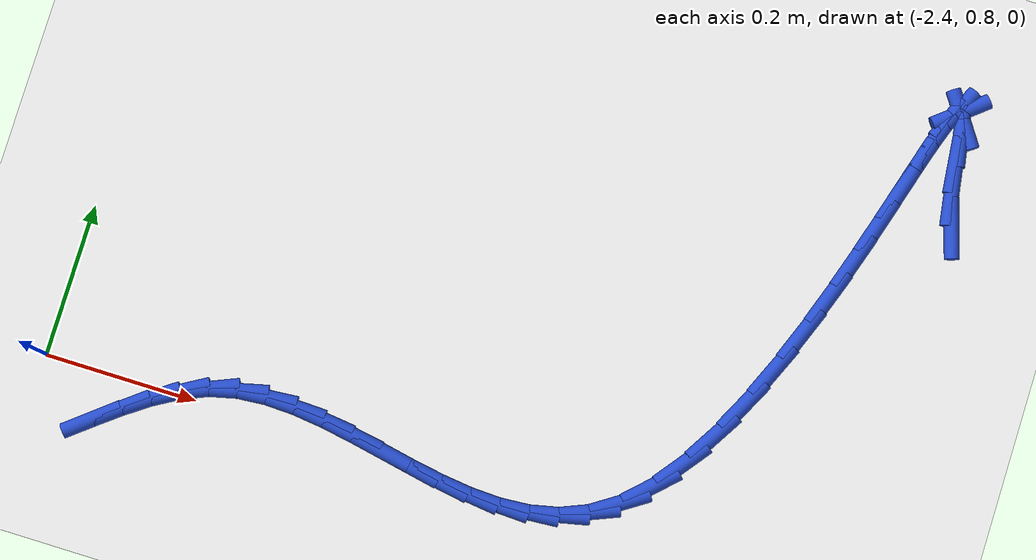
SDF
<sdf version="1.6">
 <world name="default">
  <model name="ground_plane">
   <static>1</static>
   <link name="link">
    <collision name="collision">
     <geometry><plane><normal>0 0 1</normal><size>100 100</size></plane></geometry>
     <surface><friction><ode><mu>100</mu><mu2>50</mu2></ode></friction></surface>
    </collision>
    <visual name="visual">
     <cast_shadows>0</cast_shadows>
     <geometry><plane><normal>0 0 1</normal><size>100 100</size></plane></geometry>
     <material>
      <script><uri>file://media/materials/scripts/gazebo.material</uri><name>Gazebo/WhiteGlow</name></script>
     </material>
    </visual>
   </link>
  </model>
  <model name="line">
   <link name="link_54">
    <pose>-1.3430984188779078 1.2956565197262773 0.01 0 1.57 -1.2797417583829147</pose>
    <collision name="collision">
     <geometry><cylinder><radius>0.01</radius><length>0.08</length></cylinder></geometry>
    </collision>
    <visual name="visual">
     <material>
      <script><name>Gazebo/Blue</name><uri>file://media/materials/scripts/gazebo.material</uri></script>
     </material>
     <geometry><cylinder><radius>0.01</radius><length>0.08</length></cylinder></geometry>
    </visual>
   </link>
   <link name="link_55">
    <pose>-1.3552226402459078 1.3361297322374697 0.01 0 1.57 -1.4208867539696892</pose>
    <collision name="collision">
     <geometry><cylinder><radius>0.01</radius><length>0.08</length></cylinder></geometry>
    </collision>
    <visual name="visual">
     <material>
      <script><name>Gazebo/Blue</name><uri>file://media/materials/scripts/gazebo.material</uri></script>
     </material>
     <geometry><cylinder><radius>0.01</radius><length>0.08</length></cylinder></geometry>
    </visual>
   </link>
   <link name="link_56">
    <pose>-1.361479244165218 1.3775524743925938 0.01 0 1.57 -1.469807228665049</pose>
    <collision name="collision">
     <geometry><cylinder><radius>0.01</radius><length>0.08</length></cylinder></geometry>
    </collision>
    <visual name="visual">
     <material>
      <script><name>Gazebo/Blue</name><uri>file://media/materials/scripts/gazebo.material</uri></script>
     </material>
     <geometry><cylinder><radius>0.01</radius><length>0.08</length></cylinder></geometry>
    </visual>
   </link>
   <link name="link_57">
    <pose>-1.365031373855405 1.4126062150390049 0.01 0 1.57 -1.4000625566689096</pose>
    <collision name="collision">
     <geometry><cylinder><radius>0.01</radius><length>0.08</length></cylinder></geometry>
    </collision>
    <visual name="visual">
     <material>
      <script><name>Gazebo/Blue</name><uri>file://media/materials/scripts/gazebo.material</uri></script>
     </material>
     <geometry><cylinder><radius>0.01</radius><length>0.08</length></cylinder></geometry>
    </visual>
   </link>
   <link name="link_58">
    <pose>-1.368822848540975 1.4345969575189295 0.01 0 1.57 -0.98458259522996</pose>
    <collision name="collision">
     <geometry><cylinder><radius>0.01</radius><length>0.08</length></cylinder></geometry>
    </collision>
    <visual name="visual">
     <material>
      <script><name>Gazebo/Blue</name><uri>file://media/materials/scripts/gazebo.material</uri></script>
     </material>
     <geometry><cylinder><radius>0.01</radius><length>0.08</length></cylinder></geometry>
    </visual>
   </link>
   <link name="link_59">
    <pose>-1.3738923343924123 1.4422307387749302 0.01 0 1.57 0.687512411817933</pose>
    <collision name="collision">
     <geometry><cylinder><radius>0.01</radius><length>0.08</length></cylinder></geometry>
    </collision>
    <visual name="visual">
     <material>
      <script><name>Gazebo/Blue</name><uri>file://media/materials/scripts/gazebo.material</uri></script>
     </material>
     <geometry><cylinder><radius>0.01</radius><length>0.08</length></cylinder></geometry>
    </visual>
   </link>
   <link name="link_60">
    <pose>-1.3803089806841495 1.4369616289344793 0.01 0 1.57 1.1325113725217084</pose>
    <collision name="collision">
     <geometry><cylinder><radius>0.01</radius><length>0.08</length></cylinder></geometry>
    </collision>
    <visual name="visual">
     <material>
      <script><name>Gazebo/Blue</name><uri>file://media/materials/scripts/gazebo.material</uri></script>
     </material>
     <geometry><cylinder><radius>0.01</radius><length>0.08</length></cylinder></geometry>
    </visual>
   </link>
   <link name="link_61">
    <pose>-1.388134259178518 1.4202654595385038 0.01 0 1.57 1.2351651799047005</pose>
    <collision name="collision">
     <geometry><cylinder><radius>0.01</radius><length>0.08</length></cylinder></geometry>
    </collision>
    <visual name="visual">
     <material>
      <script><name>Gazebo/Blue</name><uri>file://media/materials/scripts/gazebo.material</uri></script>
     </material>
     <geometry><cylinder><radius>0.01</radius><length>0.08</length></cylinder></geometry>
    </visual>
   </link>
   <link name="link_62">
    <pose>-1.3974296416378493 1.3936180621279333 0.01 0 1.57 1.2717787340528484</pose>
    <collision name="collision">
     <geometry><cylinder><radius>0.01</radius><length>0.08</length></cylinder></geometry>
    </collision>
    <visual name="visual">
     <material>
      <script><name>Gazebo/Blue</name><uri>file://media/materials/scripts/gazebo.material</uri></script>
     </material>
     <geometry><cylinder><radius>0.01</radius><length>0.08</length></cylinder></geometry>
    </visual>
   </link>
   <link name="link_63">
    <pose>-1.4082565998244754 1.358495268243697 0.01 0 1.57 1.2840659904218539</pose>
    <collision name="collision">
     <geometry><cylinder><radius>0.01</radius><length>0.08</length></cylinder></geometry>
    </collision>
    <visual name="visual">
     <material>
      <script><name>Gazebo/Blue</name><uri>file://media/materials/scripts/gazebo.material</uri></script>
     </material>
     <geometry><cylinder><radius>0.01</radius><length>0.08</length></cylinder></geometry>
    </visual>
   </link>
   <link name="link_64">
    <pose>-1.4206766055007285 1.316372909426724 0.01 0 1.57 1.2835675635956658</pose>
    <collision name="collision">
     <geometry><cylinder><radius>0.01</radius><length>0.08</length></cylinder></geometry>
    </collision>
    <visual name="visual">
     <material>
      <script><name>Gazebo/Blue</name><uri>file://media/materials/scripts/gazebo.material</uri></script>
     </material>
     <geometry><cylinder><radius>0.01</radius><length>0.08</length></cylinder></geometry>
    </visual>
   </link>
   <link name="link_65">
    <pose>-1.4347511304289393 1.2687268172179424 0.01 0 1.57 1.2743367036474234</pose>
    <collision name="collision">
     <geometry><cylinder><radius>0.01</radius><length>0.08</length></cylinder></geometry>
    </collision>
    <visual name="visual">
     <material>
      <script><name>Gazebo/Blue</name><uri>file://media/materials/scripts/gazebo.material</uri></script>
     </material>
     <geometry><cylinder><radius>0.01</radius><length>0.08</length></cylinder></geometry>
    </visual>
   </link>
   <link name="link_66">
    <pose>-1.4505416463714398 1.2170328231582808 0.01 0 1.57 1.2577064272172573</pose>
    <collision name="collision">
     <geometry><cylinder><radius>0.01</radius><length>0.08</length></cylinder></geometry>
    </collision>
    <visual name="visual">
     <material>
      <script><name>Gazebo/Blue</name><uri>file://media/materials/scripts/gazebo.material</uri></script>
     </material>
     <geometry><cylinder><radius>0.01</radius><length>0.08</length></cylinder></geometry>
    </visual>
   </link>
   <link name="link_67">
    <pose>-1.4681096250905625 1.1627667587886703 0.01 0 1.57 1.233637116908888</pose>
    <collision name="collision">
     <geometry><cylinder><radius>0.01</radius><length>0.08</length></cylinder></geometry>
    </collision>
    <visual name="visual">
     <material>
      <script><name>Gazebo/Blue</name><uri>file://media/materials/scripts/gazebo.material</uri></script>
     </material>
     <geometry><cylinder><radius>0.01</radius><length>0.08</length></cylinder></geometry>
    </visual>
   </link>
   <link name="link_68">
    <pose>-1.4875165383486384 1.1074044556500373 0.01 0 1.57 1.201088013503214</pose>
    <collision name="collision">
     <geometry><cylinder><radius>0.01</radius><length>0.08</length></cylinder></geometry>
    </collision>
    <visual name="visual">
     <material>
      <script><name>Gazebo/Blue</name><uri>file://media/materials/scripts/gazebo.material</uri></script>
     </material>
     <geometry><cylinder><radius>0.01</radius><length>0.08</length></cylinder></geometry>
    </visual>
   </link>
   <link name="link_69">
    <pose>-1.508823857907999 1.0524217452833127 0.01 0 1.57 1.1579750342196502</pose>
    <collision name="collision">
     <geometry><cylinder><radius>0.01</radius><length>0.08</length></cylinder></geometry>
    </collision>
    <visual name="visual">
     <material>
      <script><name>Gazebo/Blue</name><uri>file://media/materials/scripts/gazebo.material</uri></script>
     </material>
     <geometry><cylinder><radius>0.01</radius><length>0.08</length></cylinder></geometry>
    </visual>
   </link>
   <link name="link_70">
    <pose>-1.5320930555309769 0.9992944592294232 0.01 0 1.57 1.1008304515854521</pose>
    <collision name="collision">
     <geometry><cylinder><radius>0.01</radius><length>0.08</length></cylinder></geometry>
    </collision>
    <visual name="visual">
     <material>
      <script><name>Gazebo/Blue</name><uri>file://media/materials/scripts/gazebo.material</uri></script>
     </material>
     <geometry><cylinder><radius>0.01</radius><length>0.08</length></cylinder></geometry>
    </visual>
   </link>
   <link name="link_71">
    <pose>-1.5573856029799031 0.9494984290293003 0.01 0 1.57 1.024124346306182</pose>
    <collision name="collision">
     <geometry><cylinder><radius>0.01</radius><length>0.08</length></cylinder></geometry>
    </collision>
    <visual name="visual">
     <material>
      <script><name>Gazebo/Blue</name><uri>file://media/materials/scripts/gazebo.material</uri></script>
     </material>
     <geometry><cylinder><radius>0.01</radius><length>0.08</length></cylinder></geometry>
    </visual>
   </link>
   <link name="link_72">
    <pose>-1.58476297201711 0.904509486223871 0.01 0 1.57 0.9191745342499368</pose>
    <collision name="collision">
     <geometry><cylinder><radius>0.01</radius><length>0.08</length></cylinder></geometry>
    </collision>
    <visual name="visual">
     <material>
      <script><name>Gazebo/Blue</name><uri>file://media/materials/scripts/gazebo.material</uri></script>
     </material>
     <geometry><cylinder><radius>0.01</radius><length>0.08</length></cylinder></geometry>
    </visual>
   </link>
   <link name="link_73">
    <pose>-1.614286634404928 0.8658034623540651 0.01 0 1.57 0.7729270895372587</pose>
    <collision name="collision">
     <geometry><cylinder><radius>0.01</radius><length>0.08</length></cylinder></geometry>
    </collision>
    <visual name="visual">
     <material>
      <script><name>Gazebo/Blue</name><uri>file://media/materials/scripts/gazebo.material</uri></script>
     </material>
     <geometry><cylinder><radius>0.01</radius><length>0.08</length></cylinder></geometry>
    </visual>
   </link>
   <link name="link_74">
    <pose>-1.6460177681856738 0.8348540626633555 0.01 0 1.57 0.5838277135060976</pose>
    <collision name="collision">
     <geometry><cylinder><radius>0.01</radius><length>0.08</length></cylinder></geometry>
    </collision>
    <visual name="visual">
     <material>
      <script><name>Gazebo/Blue</name><uri>file://media/materials/scripts/gazebo.material</uri></script>
     </material>
     <geometry><cylinder><radius>0.01</radius><length>0.08</length></cylinder></geometry>
    </visual>
   </link>
   <link name="link_75">
    <pose>-1.679923500570183 0.8124541397728001 0.01 0 1.57 0.3896519165907768</pose>
    <collision name="collision">
     <geometry><cylinder><radius>0.01</radius><length>0.08</length></cylinder></geometry>
    </collision>
    <visual name="visual">
     <material>
      <script><name>Gazebo/Blue</name><uri>file://media/materials/scripts/gazebo.material</uri></script>
     </material>
     <geometry><cylinder><radius>0.01</radius><length>0.08</length></cylinder></geometry>
    </visual>
   </link>
   <link name="link_76">
    <pose>-1.7157428200880442 0.7977450051425384 0.01 0 1.57 0.21364988575221486</pose>
    <collision name="collision">
     <geometry><cylinder><radius>0.01</radius><length>0.08</length></cylinder></geometry>
    </collision>
    <visual name="visual">
     <material>
      <script><name>Gazebo/Blue</name><uri>file://media/materials/scripts/gazebo.material</uri></script>
     </material>
     <geometry><cylinder><radius>0.01</radius><length>0.08</length></cylinder></geometry>
    </visual>
   </link>
   <link name="link_77">
    <pose>-1.7531807956816696 0.789622419613788 0.01 0 1.57 0.06801052286666809</pose>
    <collision name="collision">
     <geometry><cylinder><radius>0.01</radius><length>0.08</length></cylinder></geometry>
    </collision>
    <visual name="visual">
     <material>
      <script><name>Gazebo/Blue</name><uri>file://media/materials/scripts/gazebo.material</uri></script>
     </material>
     <geometry><cylinder><radius>0.01</radius><length>0.08</length></cylinder></geometry>
    </visual>
   </link>
   <link name="link_78">
    <pose>-1.791942496293471 0.7869821440277677 0.01 0 1.57 -0.0436458907449302</pose>
    <collision name="collision">
     <geometry><cylinder><radius>0.01</radius><length>0.08</length></cylinder></geometry>
    </collision>
    <visual name="visual">
     <material>
      <script><name>Gazebo/Blue</name><uri>file://media/materials/scripts/gazebo.material</uri></script>
     </material>
     <geometry><cylinder><radius>0.01</radius><length>0.08</length></cylinder></geometry>
    </visual>
   </link>
   <link name="link_79">
    <pose>-1.8317329908658608 0.7887199392256946 0.01 0 1.57 -0.12304474501848074</pose>
    <collision name="collision">
     <geometry><cylinder><radius>0.01</radius><length>0.08</length></cylinder></geometry>
    </collision>
    <visual name="visual">
     <material>
      <script><name>Gazebo/Blue</name><uri>file://media/materials/scripts/gazebo.material</uri></script>
     </material>
     <geometry><cylinder><radius>0.01</radius><length>0.08</length></cylinder></geometry>
    </visual>
   </link>
   <link name="link_80">
    <pose>-1.872257348341252 0.7937315660487878 0.01 0 1.57 -0.17354513725176587</pose>
    <collision name="collision">
     <geometry><cylinder><radius>0.01</radius><length>0.08</length></cylinder></geometry>
    </collision>
    <visual name="visual">
     <material>
      <script><name>Gazebo/Blue</name><uri>file://media/materials/scripts/gazebo.material</uri></script>
     </material>
     <geometry><cylinder><radius>0.01</radius><length>0.08</length></cylinder></geometry>
    </visual>
   </link>
   <link name="link_81">
    <pose>-1.913220637662056 0.8009127853382647 0.01 0 1.57 -0.19798294448163245</pose>
    <collision name="collision">
     <geometry><cylinder><radius>0.01</radius><length>0.08</length></cylinder></geometry>
    </collision>
    <visual name="visual">
     <material>
      <script><name>Gazebo/Blue</name><uri>file://media/materials/scripts/gazebo.material</uri></script>
     </material>
     <geometry><cylinder><radius>0.01</radius><length>0.08</length></cylinder></geometry>
    </visual>
   </link>
   <link name="link_82">
    <pose>-1.9543279277706853 0.8091593579353433 0.01 0 1.57 -0.1977809022821603</pose>
    <collision name="collision">
     <geometry><cylinder><radius>0.01</radius><length>0.08</length></cylinder></geometry>
    </collision>
    <visual name="visual">
     <material>
      <script><name>Gazebo/Blue</name><uri>file://media/materials/scripts/gazebo.material</uri></script>
     </material>
     <geometry><cylinder><radius>0.01</radius><length>0.08</length></cylinder></geometry>
    </visual>
   </link>
   <link name="link_83">
    <pose>-1.9952842876095525 0.8173670446812417 0.01 0 1.57 -0.17265219575376914</pose>
    <collision name="collision">
     <geometry><cylinder><radius>0.01</radius><length>0.08</length></cylinder></geometry>
    </collision>
    <visual name="visual">
     <material>
      <script><name>Gazebo/Blue</name><uri>file://media/materials/scripts/gazebo.material</uri></script>
     </material>
     <geometry><cylinder><radius>0.01</radius><length>0.08</length></cylinder></geometry>
    </visual>
   </link>
   <link name="link_84">
    <pose>-2.0357947861210692 0.8244316064171783 0.01 0 1.57 -0.12054008566198647</pose>
    <collision name="collision">
     <geometry><cylinder><radius>0.01</radius><length>0.08</length></cylinder></geometry>
    </collision>
    <visual name="visual">
     <material>
      <script><name>Gazebo/Blue</name><uri>file://media/materials/scripts/gazebo.material</uri></script>
     </material>
     <geometry><cylinder><radius>0.01</radius><length>0.08</length></cylinder></geometry>
    </visual>
   </link>
   <link name="link_85">
    <pose>-2.075564492247649 0.8292488039843706 0.01 0 1.57 -0.03781938551490787</pose>
    <collision name="collision">
     <geometry><cylinder><radius>0.01</radius><length>0.08</length></cylinder></geometry>
    </collision>
    <visual name="visual">
     <material>
      <script><name>Gazebo/Blue</name><uri>file://media/materials/scripts/gazebo.material</uri></script>
     </material>
     <geometry><cylinder><radius>0.01</radius><length>0.08</length></cylinder></geometry>
    </visual>
   </link>
   <link name="link_86">
    <pose>-2.1142984749317018 0.8307143982240368 0.01 0 1.57 0.07977637594943718</pose>
    <collision name="collision">
     <geometry><cylinder><radius>0.01</radius><length>0.08</length></cylinder></geometry>
    </collision>
    <visual name="visual">
     <material>
      <script><name>Gazebo/Blue</name><uri>file://media/materials/scripts/gazebo.material</uri></script>
     </material>
     <geometry><cylinder><radius>0.01</radius><length>0.08</length></cylinder></geometry>
    </visual>
   </link>
   <link name="link_87">
    <pose>-2.1517018031156425 0.8277241499773953 0.01 0 1.57 0.23438262253025982</pose>
    <collision name="collision">
     <geometry><cylinder><radius>0.01</radius><length>0.08</length></cylinder></geometry>
    </collision>
    <visual name="visual">
     <material>
      <script><name>Gazebo/Blue</name><uri>file://media/materials/scripts/gazebo.material</uri></script>
     </material>
     <geometry><cylinder><radius>0.01</radius><length>0.08</length></cylinder></geometry>
    </visual>
   </link>
   <link name="link_88">
    <pose>-2.18748161788283 0.8191809666712081 0.01 0 1.57 0.3999697519081523</pose>
    <collision name="collision">
     <geometry><cylinder><radius>0.01</radius><length>0.08</length></cylinder></geometry>
    </collision>
    <visual name="visual">
     <material>
      <script><name>Gazebo/Blue</name><uri>file://media/materials/scripts/gazebo.material</uri></script>
     </material>
     <geometry><cylinder><radius>0.01</radius><length>0.08</length></cylinder></geometry>
    </visual>
   </link>
   <link name="link_89">
    <pose>-2.221571626541716 0.80476915764935 0.01 0 1.57 0.5283141425727861</pose>
    <collision name="collision">
     <geometry><cylinder><radius>0.01</radius><length>0.08</length></cylinder></geometry>
    </collision>
    <visual name="visual">
     <material>
      <script><name>Gazebo/Blue</name><uri>file://media/materials/scripts/gazebo.material</uri></script>
     </material>
     <geometry><cylinder><radius>0.01</radius><length>0.08</length></cylinder></geometry>
    </visual>
   </link>
   <link name="link_90">
    <pose>-2.254333129726219 0.7856477544660716 0.01 0 1.57 0.615330156898499</pose>
    <collision name="collision">
     <geometry><cylinder><radius>0.01</radius><length>0.08</length></cylinder></geometry>
    </collision>
    <visual name="visual">
     <material>
      <script><name>Gazebo/Blue</name><uri>file://media/materials/scripts/gazebo.material</uri></script>
     </material>
     <geometry><cylinder><radius>0.01</radius><length>0.08</length></cylinder></geometry>
    </visual>
   </link>
   <link name="link_91">
    <pose>-2.2861748641199 0.7631393903780261 0.01 0 1.57 0.665094621866829</pose>
    <collision name="collision">
     <geometry><cylinder><radius>0.01</radius><length>0.08</length></cylinder></geometry>
    </collision>
    <visual name="visual">
     <material>
      <script><name>Gazebo/Blue</name><uri>file://media/materials/scripts/gazebo.material</uri></script>
     </material>
     <geometry><cylinder><radius>0.01</radius><length>0.08</length></cylinder></geometry>
    </visual>
   </link>
   <link name="link_92">
    <pose>-2.3175055664063224 0.7385666986418661 0.01 0 1.57 0.6811833779575613</pose>
    <collision name="collision">
     <geometry><cylinder><radius>0.01</radius><length>0.08</length></cylinder></geometry>
    </collision>
    <visual name="visual">
     <material>
      <script><name>Gazebo/Blue</name><uri>file://media/materials/scripts/gazebo.material</uri></script>
     </material>
     <geometry><cylinder><radius>0.01</radius><length>0.08</length></cylinder></geometry>
    </visual>
   </link>
  </model>
 </world>
</sdf>
